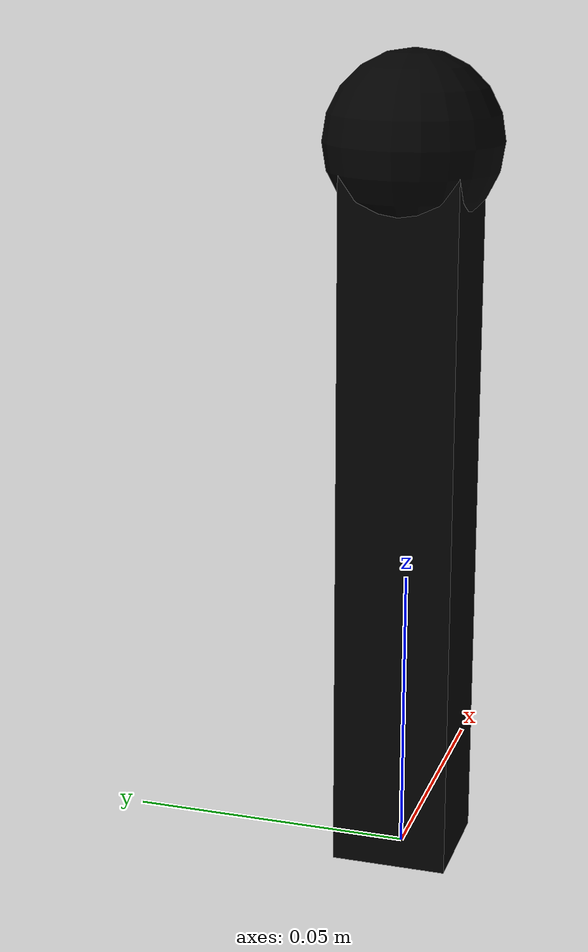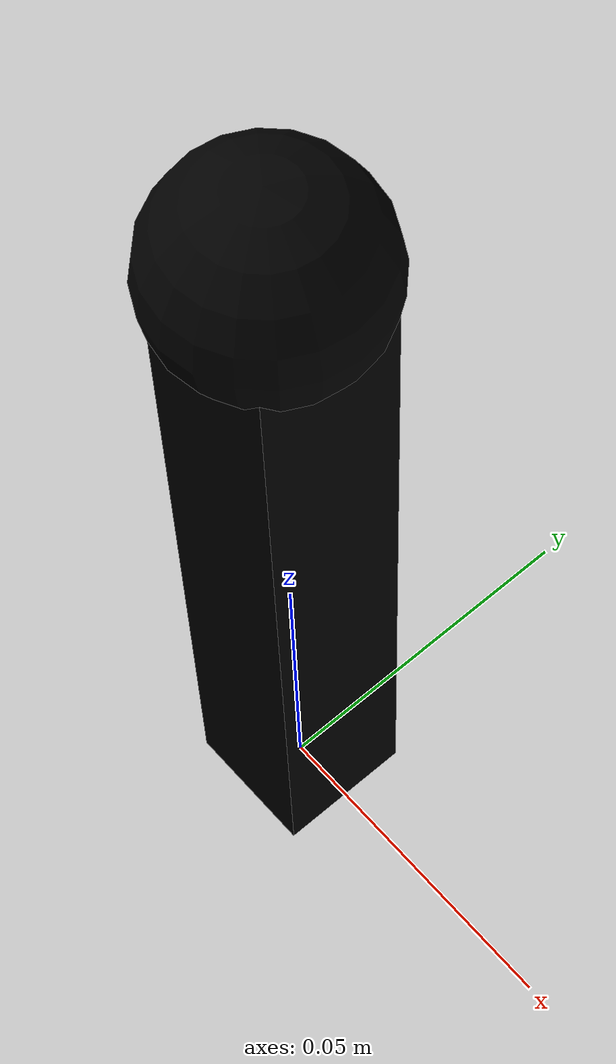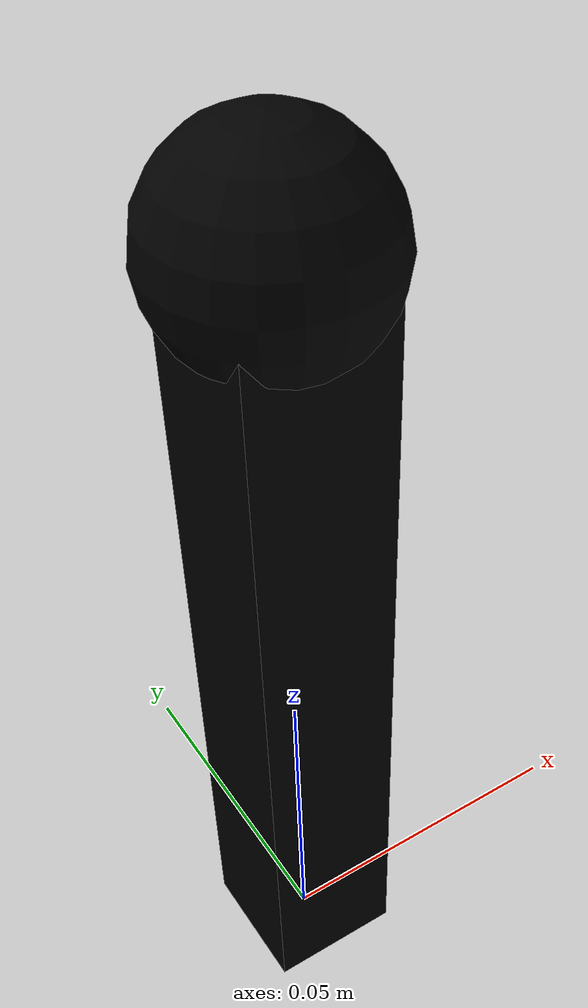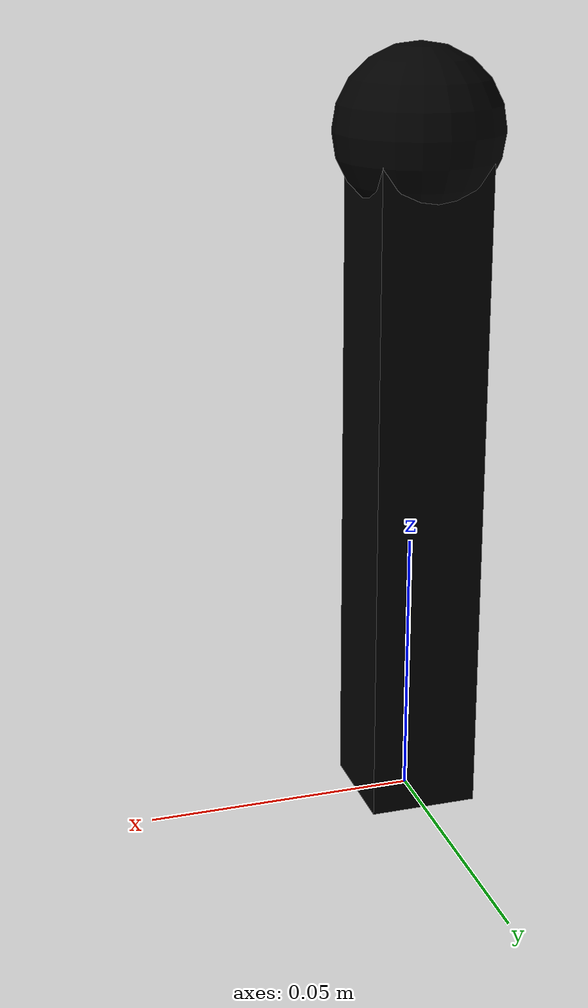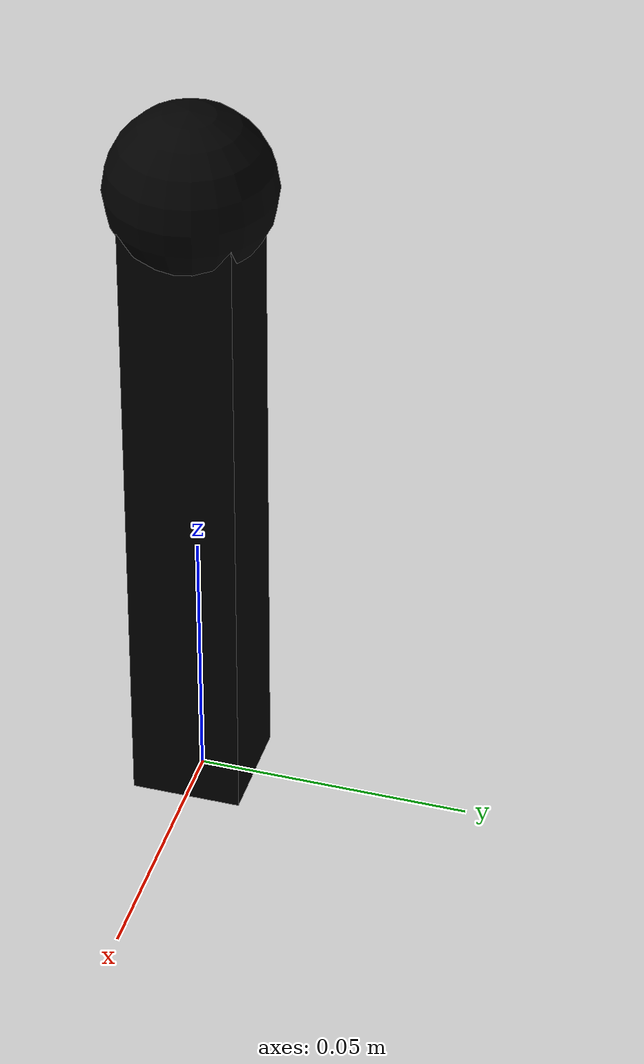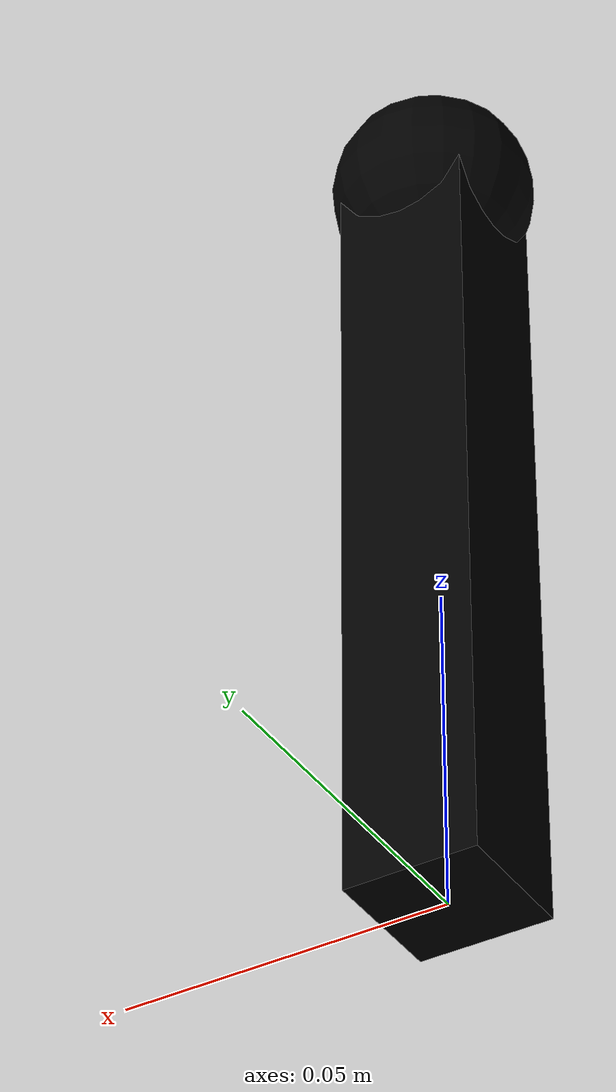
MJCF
<mujoco model="ee_pusher">
  <!-- Pusher end effector, authored relative to fr3_arm.xml's
       `attachment_site`. `pusher` and `ee_frame` are named because
       task.push_fr3 looks them up. -->
  <worldbody>
    <body name="pusher" pos="0 0 0" gravcomp="1">
      <geom
        type="box"
        name="pusher_shaft"
        size="0.01 0.01 0.0625"
        pos="0 0 0.0625"
        rgba="0.0 0.0 0.0 1"
      />
      <body name="ee_frame" pos="0 0 0.125" gravcomp="1">
        <geom
          type="sphere"
          name="ee"
          size="0.015"
          pos="0 0 0"
          rgba="0 0 0 1"
          friction="0.01"
          solref="0.03 1.1"
          solimp="0.5 0.95 0.002 0.5 2"
          condim="3"
        />
        <site name="ee_site" pos="0 0 0.0" size="0.015" rgba="0 0 0 1" />
      </body>
    </body>
  </worldbody>
</mujoco>
